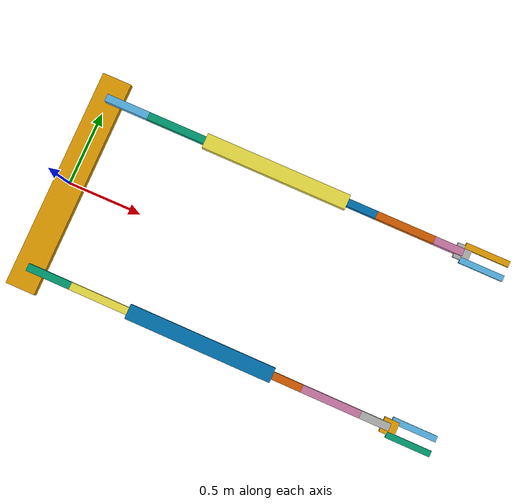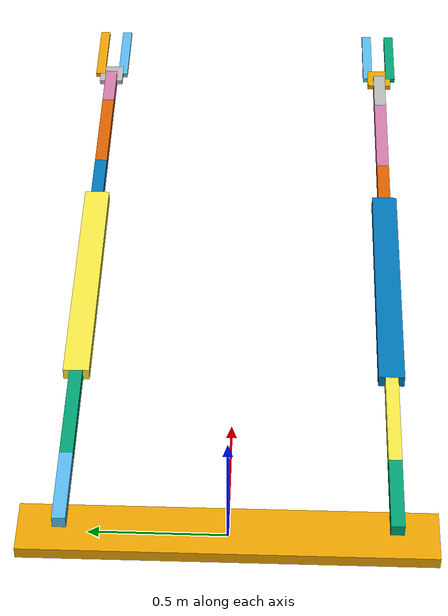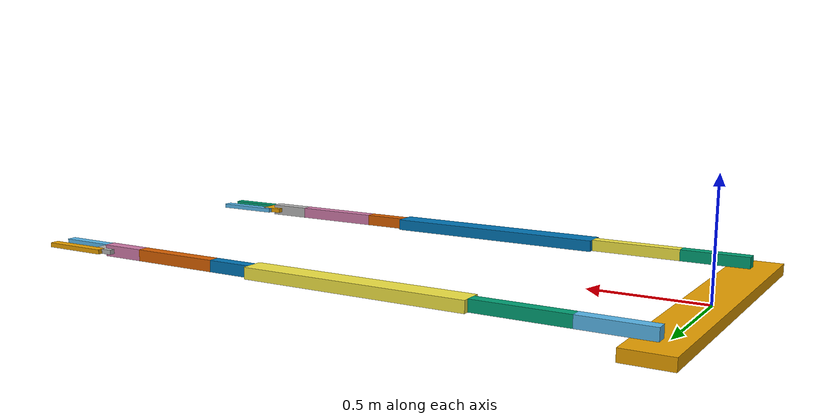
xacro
<?xml version="1.0"?>
<robot xmlns:xacro="http://www.ros.org/wiki/xacro" name="dual_arm_robot">
    <xacro:arg name="initial_positions_file" default="initial_positions.yaml" />

    <!-- Import dual_arm_robot urdf file -->
    <xacro:include filename="$(find control_robot)/urdf/dual_arms.xacro" />

    <!-- Import control_xacro -->
    <xacro:include filename="dual_arm_robot.ros2_control.xacro" />

    <xacro:dual_arm_robot_ros2_control name="FakeSystem" initial_positions_file="$(arg initial_positions_file)"/>

</robot>

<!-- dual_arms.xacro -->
<robot xmlns:xacro="http://ros.org/wiki/xacro" name="dual_arm_robot">

  <!-- Common properties -->
  <xacro:property name="effort" value="1"/>
  <xacro:property name="velocity" value="1.0"/>
  <xacro:property name="gripper_velocity" value="0.1"/>
  <xacro:property name="gripper_limit" value="0.03"/>
  <xacro:property name="arm_offset" value="0.6"/> <!-- Y-axis offset from base center -->

  <!-- Long base link along Y -->
  <link name="base_link">
    <visual><geometry><box size="0.2 1.5 0.05"/></geometry></visual>
    <collision><geometry><box size="0.2 1.0 0.05"/></geometry></collision>
  </link>

  <!-- Macro for an arm -->
  <xacro:macro name="one_arm" params="prefix base_offset_y">
    <xacro:macro name="arm_segment" params="joint_name parent_link child_link origin_xyz link_length link_size">
      <joint name="${prefix}${joint_name}" type="revolute">
        <origin xyz="${origin_xyz}"/>
        <axis xyz="0 0 1"/>
        <parent link="${parent_link}"/>
        <child link="${prefix}${child_link}"/>
        <limit effort="${effort}" velocity="${velocity}" lower="-3.14" upper="3.14"/>
      </joint>
      <link name="${prefix}${child_link}">
        <visual><origin xyz="${link_length} 0 0"/><geometry><box size="${link_size}"/></geometry></visual>
        <collision><origin xyz="${link_length} 0 0"/><geometry><box size="${link_size}"/></geometry></collision>
      </link>
    </xacro:macro>

    <!-- First joint connects arm to base -->
    <xacro:arm_segment joint_name="joint1" parent_link="base_link" child_link="link1" origin_xyz="0 ${base_offset_y} 0.05" link_length="0.15" link_size="0.3 0.05 0.05"/>
    <xacro:arm_segment joint_name="joint2" parent_link="${prefix}link1" child_link="link2" origin_xyz="0.3 0 0" link_length="0.2" link_size="0.4 0.05 0.05"/>
    <xacro:arm_segment joint_name="joint3" parent_link="${prefix}link2" child_link="link3" origin_xyz="0.4 0 0" link_length="0.5" link_size="1.0 0.1 0.05"/>
    <xacro:arm_segment joint_name="joint4" parent_link="${prefix}link3" child_link="link4" origin_xyz="1.0 0 0" link_length="0.1" link_size="0.2 0.05 0.05"/>
    <xacro:arm_segment joint_name="joint5" parent_link="${prefix}link4" child_link="link5" origin_xyz="0.2 0 0" link_length="0.2" link_size="0.4 0.05 0.05"/>

    <joint name="${prefix}joint6" type="revolute">
      <origin xyz="0.4 0 0"/><axis xyz="1 0 0"/>
      <parent link="${prefix}link5"/><child link="${prefix}link6"/>
      <limit effort="${effort}" velocity="${velocity}" lower="-3.14" upper="3.14"/>
    </joint>
    <link name="${prefix}link6">
      <visual><origin xyz="0.1 0 0"/><geometry><box size="0.2 0.05 0.05"/></geometry></visual>
      <collision><origin xyz="0.1 0 0"/><geometry><box size="0.2 0.05 0.05"/></geometry></collision>
    </link>

    <!-- Palm and gripper -->
    <joint name="${prefix}gripper_base_joint" type="fixed">
      <origin xyz="0.2 0 0"/><parent link="${prefix}link6"/><child link="${prefix}palm_link"/>
    </joint>
    <link name="${prefix}palm_link">
      <visual><geometry><box size="0.1 0.1 0.02"/></geometry></visual>
      <collision><geometry><box size="0.1 0.1 0.02"/></geometry></collision>
    </link>

    <!-- Gripper fingers -->
    <joint name="${prefix}left_finger_joint" type="prismatic">
      <origin xyz="0.15 0.05 0"/><axis xyz="0 -1 0"/>
      <parent link="${prefix}palm_link"/><child link="${prefix}left_finger"/>
      <limit lower="0" upper="${gripper_limit}" effort="${effort}" velocity="${gripper_velocity}"/>
    </joint>
    <link name="${prefix}left_finger">
      <visual><geometry><box size="0.3 0.04 0.02"/></geometry></visual>
      <collision><geometry><box size="0.3 0.04 0.02"/></geometry></collision>
    </link>

    <joint name="${prefix}right_finger_joint" type="prismatic">
      <origin xyz="0.15 -0.05 0"/><axis xyz="0 1 0"/>
      <parent link="${prefix}palm_link"/><child link="${prefix}right_finger"/>
      <limit lower="0" upper="${gripper_limit}" effort="${effort}" velocity="${gripper_velocity}"/>
    </joint>
    <link name="${prefix}right_finger">
      <visual><geometry><box size="0.3 0.04 0.02"/></geometry></visual>
      <collision><geometry><box size="0.3 0.04 0.02"/></geometry></collision>
    </link>
  </xacro:macro>

  <!-- Instantiate left and right arms -->
  <xacro:one_arm prefix="left_" base_offset_y="${arm_offset}"/>
  <xacro:one_arm prefix="right_" base_offset_y="-${arm_offset}"/>

    <!-- ros2_control for fake hardware -->
  <ros2_control name="FakeDualArmSystem" type="system">
    <hardware>
      <plugin>fake_components/GenericSystem</plugin>
    </hardware>

    <xacro:macro name="ros2_joint" params="name">
      <joint name="${name}">
        <command_interface name="position"/>
        <state_interface name="position"/>
        <state_interface name="velocity"/>
      </joint>
    </xacro:macro>

    <!-- Left arm joints -->
    <xacro:ros2_joint name="left_joint1"/>
    <xacro:ros2_joint name="left_joint2"/>
    <xacro:ros2_joint name="left_joint3"/>
    <xacro:ros2_joint name="left_joint4"/>
    <xacro:ros2_joint name="left_joint5"/>
    <xacro:ros2_joint name="left_joint6"/>
    <xacro:ros2_joint name="left_left_finger_joint"/>
    <xacro:ros2_joint name="left_right_finger_joint"/>

    <!-- Right arm joints -->
    <xacro:ros2_joint name="right_joint1"/>
    <xacro:ros2_joint name="right_joint2"/>
    <xacro:ros2_joint name="right_joint3"/>
    <xacro:ros2_joint name="right_joint4"/>
    <xacro:ros2_joint name="right_joint5"/>
    <xacro:ros2_joint name="right_joint6"/>
    <xacro:ros2_joint name="right_left_finger_joint"/>
    <xacro:ros2_joint name="right_right_finger_joint"/>
  </ros2_control>
</robot>
